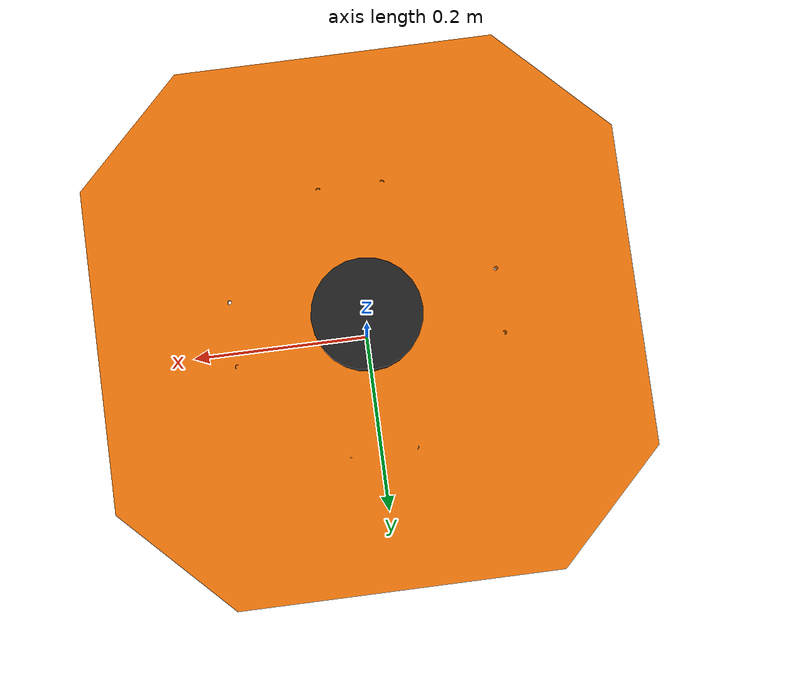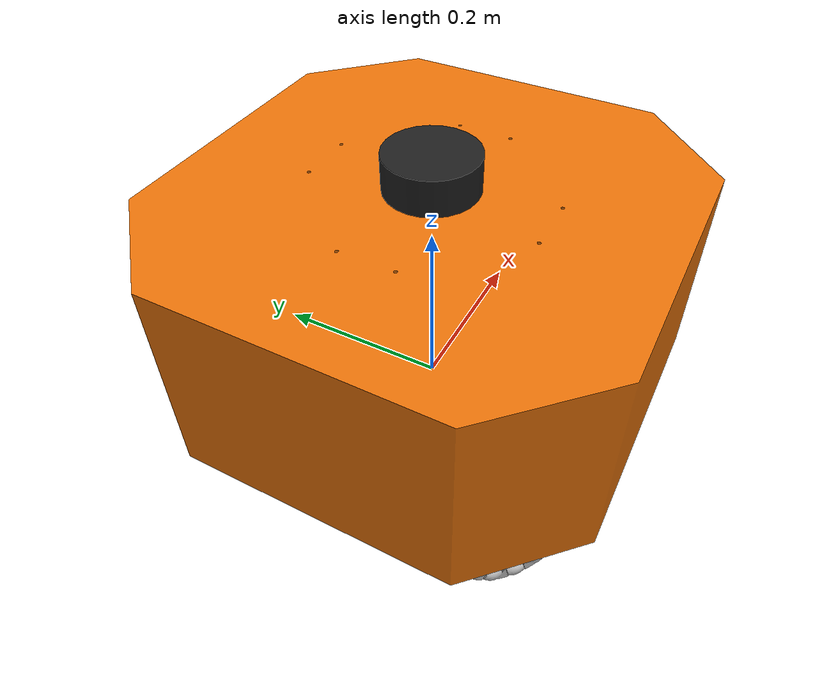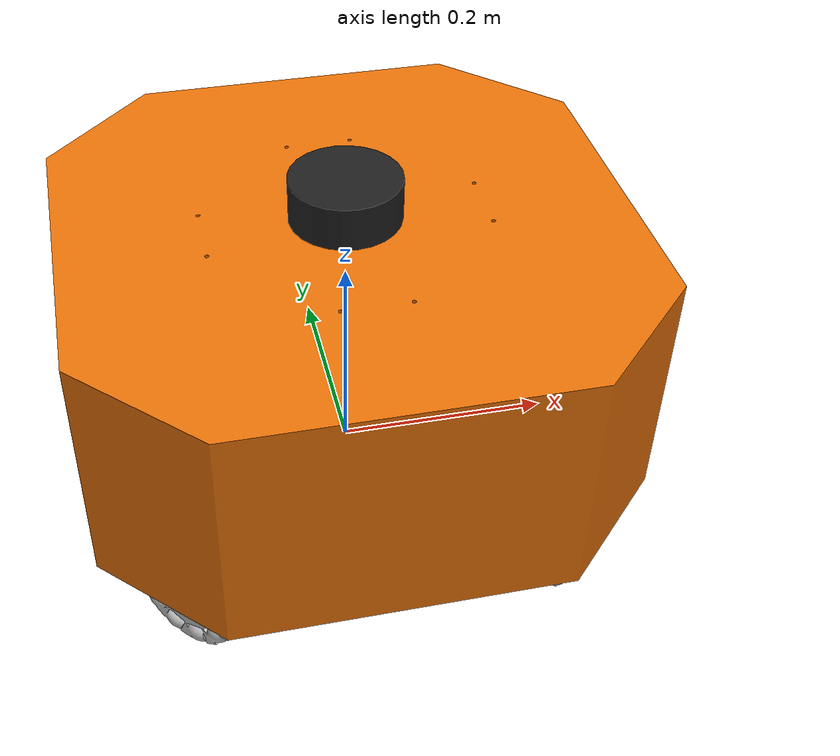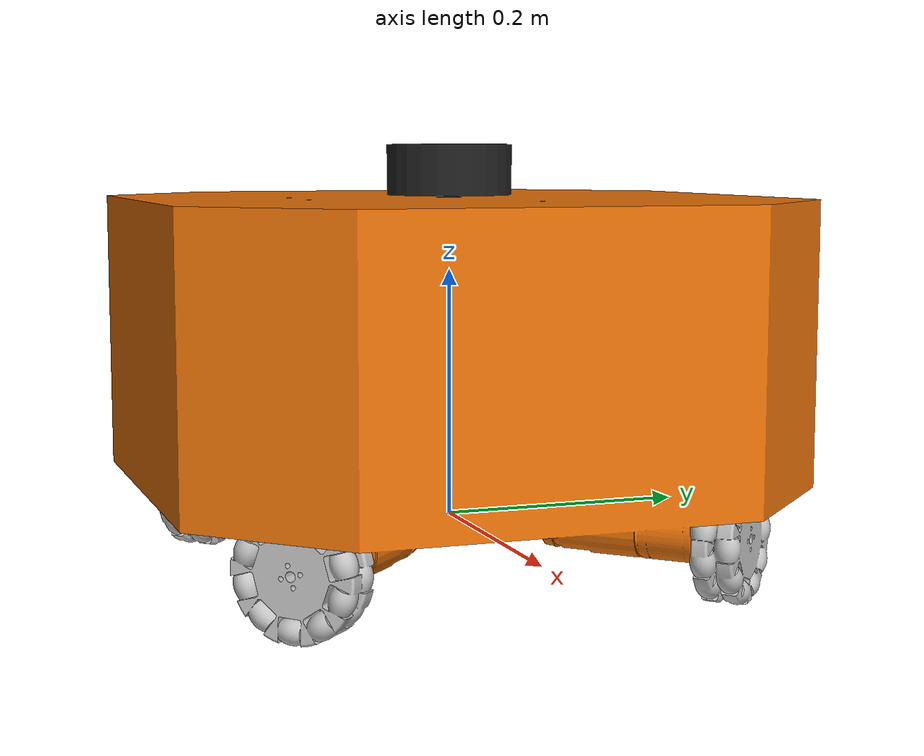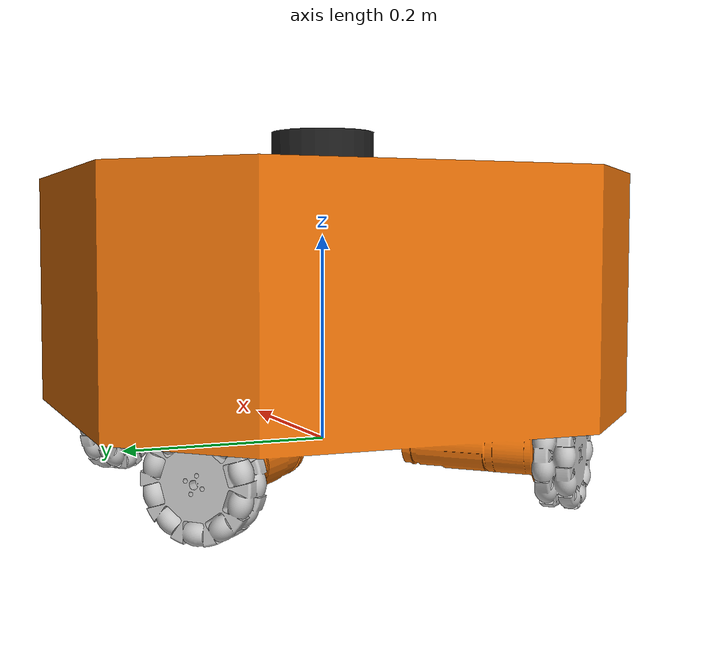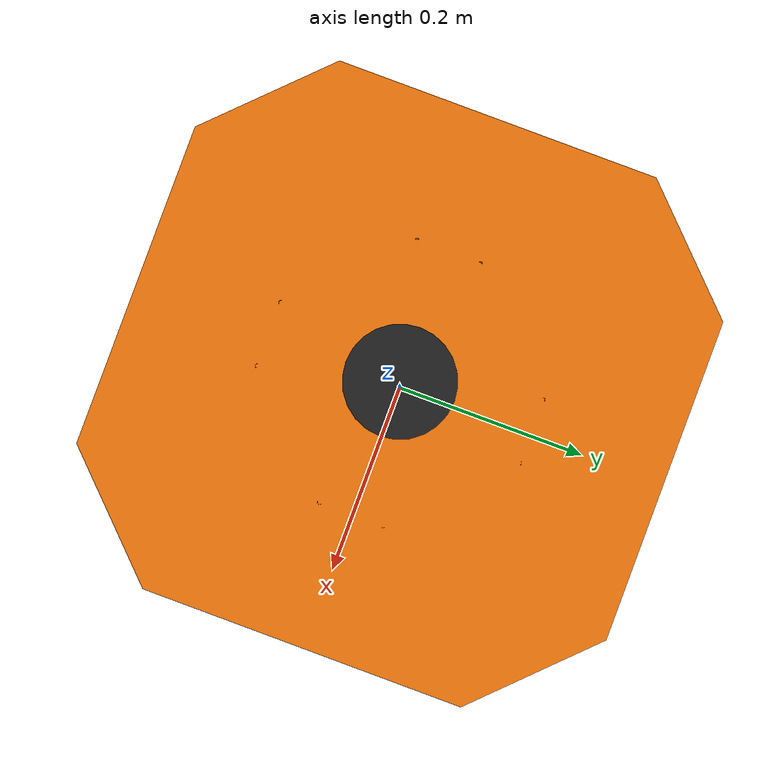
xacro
<?xml version="1.0"?>
<!-- Basic differential drive mobile base -->
<robot name="assem4" xmlns:xacro="http://www.ros.org/wiki/xacro" >
  <xacro:arg name="use_ros2_control" default="true"/>

  <!-- Enable setting arguments from the launch file -->
  <xacro:arg name="prefix" default="" />

  <xacro:include filename="$(find assem4)/description/assem4.urdf.xacro" />

  <xacro:include filename="$(find assem4)/description/lidar.xacro" />

 <!-- Import all Gazebo-customization elements, including Gazebo colors -->

  <!-- Import Rviz colors -->

  <!-- Import diffbot ros2_control description -->
  <xacro:include filename="$(find assem4)/description/astrobot.ros2_control.xacro" />

    <!-- use_fake_hardware="$(arg use_fake_hardware)"
    fake_sensor_commands="$(arg fake_sensor_commands)" -->
    <!-- joint0_name="$(arg prefix)left_wheel_joint"
    joint1_name="$(arg prefix)right_wheel_joint"  -->

</robot>

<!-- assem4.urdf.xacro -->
<robot xmlns:xacro="http://www.ros.org/wiki/xacro"
  name="assem4">
  <link
    name="base_link">
    <inertial>
      <origin
        xyz="-0.00097158991392642 0.141238649004559 9.0616641219611E-07"
        rpy="0 0 0" />
      <mass
        value="6.18799139893662" />
      <inertia
        ixx="0.190975821617679"
        ixy="4.01901385521376E-08"
        ixz="-5.59571623095739E-08"
        iyy="0.328722262102599"
        iyz="1.23706839134612E-07"
        izz="0.190967615693658" />
    </inertial>
    <visual>
      <origin
        xyz="0 0 0"
        rpy="0 0 0" />
      <geometry>
        <mesh
          filename="package://assem4/meshes/base.stl" />
      </geometry>
      <material
        name="">
        <color
          rgba="0.909803921568627 0.443137254901961 0.0313725490196078 1" />
      </material>
    </visual>
    <collision>
      <origin
        xyz="0 0 0"
        rpy="0 0 0" />
      <geometry>
        <mesh
          filename="package://assem4/meshes/base.stl" />
      </geometry>
    </collision>
  </link>
  <link
    name="roda_1">
    <inertial>
      <origin
        xyz="-0.00298916024684914 -0.0001283245750679 0.00267056079431363"
        rpy="0 0 0" />
      <mass
        value="0.203046400875564" />
      <inertia
        ixx="7.56869067967059E-05"
        ixy="3.42686548790493E-12"
        ixz="-2.28309050451303E-05"
        iyy="5.28560065572393E-05"
        iyz="-3.42686550235183E-12"
        izz="7.56869164080333E-05" />
    </inertial>
    <visual>
      <origin
        xyz="0 0 0"
        rpy="0 0 0" />
      <geometry>
        <mesh
          filename="package://assem4/meshes/roda_1.stl" />
      </geometry>
      <material
        name="">
        <color
          rgba="0.752941176470588 0.752941176470588 0.752941176470588 1" />
      </material>
    </visual>
    <collision>
      <origin
        xyz="0 0 0"
        rpy="0 0 0" />
      <geometry>
        <mesh
          filename="package://assem4/meshes/roda_1.stl" />
      </geometry>
    </collision>
  </link>
  <joint
    name="roda1"
    type="continuous">
    <origin
      xyz="0.17117 0.17085 0.0028922"
      rpy="1.5708 0 0" />
    <parent
      link="base_link" />
    <child
      link="roda_1" />
    <axis
      xyz="0.70711 0 -0.70711" />
  </joint>
  <link
    name="roda_2">
    <inertial>
      <origin
        xyz="-0.000184015036079982 -2.34095917507021E-05 0.000181148183766827"
        rpy="0 0 0" />
      <mass
        value="0.203046400875564" />
      <inertia
        ixx="7.56869054486599E-05"
        ixy="2.08742362905975E-12"
        ixz="2.28309050452597E-05"
        iyy="5.28560065569803E-05"
        iyz="2.08742362598843E-12"
        izz="7.56869177558201E-05" />
    </inertial>
    <visual>
      <origin
        xyz="0 0 0"
        rpy="0 0 0" />
      <geometry>
        <mesh
          filename="package://assem4/meshes/roda_2.stl" />
      </geometry>
      <material
        name="">
        <color
          rgba="0.752941176470588 0.752941176470588 0.752941176470588 1" />
      </material>
    </visual>
    <collision>
      <origin
        xyz="0 0 0"
        rpy="0 0 0" />
      <geometry>
        <mesh
          filename="package://assem4/meshes/roda_2.stl" />
      </geometry>
    </collision>
  </link>
  <joint
    name="roda2"
    type="continuous">
    <origin
      xyz="-0.17083 0.17119 0.0027873"
      rpy="1.5708 0 0" />
    <parent
      link="base_link" />
    <child
      link="roda_2" />
    <axis
      xyz="-0.70711 0 -0.70711" />
  </joint>
  <link
    name="roda_3">
    <inertial>
      <origin
        xyz="0.00301005381289868 -1.40647783379586E-05 -0.00264393355456624"
        rpy="0 0 0" />
      <mass
        value="0.203046400875564" />
      <inertia
        ixx="7.56869047908363E-05"
        ixy="-3.0658083767716E-13"
        ixz="-2.28309050453912E-05"
        iyy="5.28560065567172E-05"
        iyz="3.06580804252446E-13"
        izz="7.56869184133806E-05" />
    </inertial>
    <visual>
      <origin
        xyz="0 0 0"
        rpy="0 0 0" />
      <geometry>
        <mesh
          filename="package://assem4/meshes/roda_3.stl" />
      </geometry>
      <material
        name="">
        <color
          rgba="0.752941176470588 0.752941176470588 0.752941176470588 1" />
      </material>
    </visual>
    <collision>
      <origin
        xyz="0 0 0"
        rpy="0 0 0" />
      <geometry>
        <mesh
          filename="package://assem4/meshes/roda_3.stl" />
      </geometry>
    </collision>
  </link>
  <joint
    name="roda3"
    type="continuous">
    <origin
      xyz="-0.17119 -0.17083 0.0027779"
      rpy="1.5708 0 0" />
    <parent
      link="base_link" />
    <child
      link="roda_3" />
    <axis
      xyz="-0.70711 0 0.70711" />
  </joint>
  <link
    name="roda_4">
    <inertial>
      <origin
        xyz="-0.00268642055638552 0.00016146222194244 -0.00297330049881628"
        rpy="0 0 0" />
      <mass
        value="0.203046400875564" />
      <inertia
        ixx="7.56869148915296E-05"
        ixy="4.22773772736424E-12"
        ixz="2.28309050446226E-05"
        iyy="5.28560065565497E-05"
        iyz="4.22851165936016E-12"
        izz="7.56869083109736E-05" />
    </inertial>
    <visual>
      <origin
        xyz="0 0 0"
        rpy="0 0 0" />
      <geometry>
        <mesh
          filename="package://assem4/meshes/roda_4.stl" />
      </geometry>
      <material
        name="">
        <color
          rgba="0.752941176470588 0.752941176470588 0.752941176470588 1" />
      </material>
    </visual>
    <collision>
      <origin
        xyz="0 0 0"
        rpy="0 0 0" />
      <geometry>
        <mesh
          filename="package://assem4/meshes/roda_4.stl" />
      </geometry>
    </collision>
  </link>
  <joint
    name="roda4"
    type="continuous">
    <origin
      xyz="0.170865182081803 -0.171152061860908 0.0026023881812039"
      rpy="1.5707963267949 0 0" />
    <parent
      link="base_link" />
    <child
      link="roda_4" />
    <axis
      xyz="0.707106781186548 0 0.707106781186547" />
  </joint>
</robot>

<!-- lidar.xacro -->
<robot xmlns:xacro="http://www.ros.org/wiki/xacro" >

    <joint name="laser_joint" type="fixed">
        <parent link="base_link"/>
        <child link="laser_frame"/>
        <origin xyz="0 0 0.28" rpy="0 0 0"/>
    </joint>

    <link name="laser_frame">
        <visual>
            <geometry>
                <cylinder radius="0.05" length="0.04"/>
            </geometry>
            <material name="black"/>
        </visual>
        <visual>
            <origin xyz="0 0 -0.05"/>
            <geometry>
                <cylinder radius="0.01" length="0.1"/>
            </geometry>
            <material name="black"/>
        </visual>
        <collision>
            <geometry>
                <cylinder radius="0.05" length="0.04"/>
            </geometry>
        </collision>
    </link>

    <gazebo reference="laser_frame">
        <material>Gazebo/Black</material>

        <sensor name="laser" type="ray">
            <pose> 0 0 0 0 0 0 </pose>
            <visualize>false</visualize>
            <update_rate>10</update_rate>
            <ray>
                <scan>
                    <horizontal>
                        <samples>360</samples>
                        <min_angle>-3.14</min_angle>
                        <max_angle>3.14</max_angle>
                    </horizontal>
                </scan>
                <range>
                    <min>0.3</min>
                    <max>12</max>
                </range>
            </ray>
            <plugin name="laser_controller" filename="libgazebo_ros_ray_sensor.so">
                <ros>
                    <argument>~/out:=scan</argument>
                </ros>
                <output_type>sensor_msgs/LaserScan</output_type>
                <frame_name>laser_frame</frame_name>
            </plugin>
        </sensor>
    </gazebo>

</robot>
